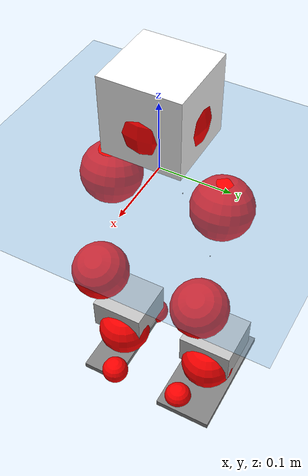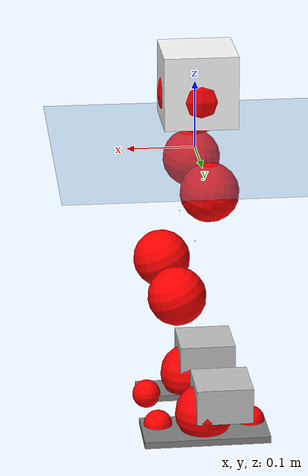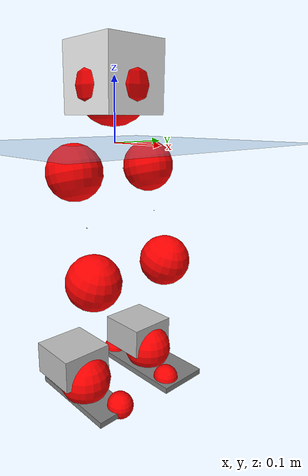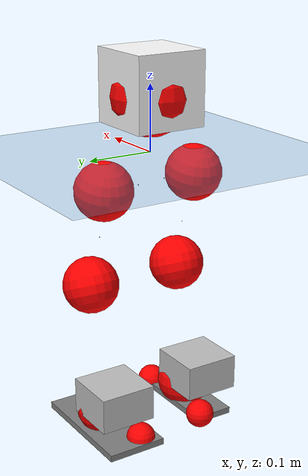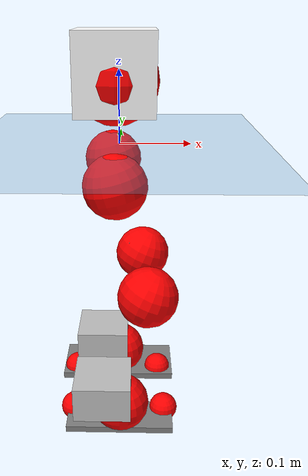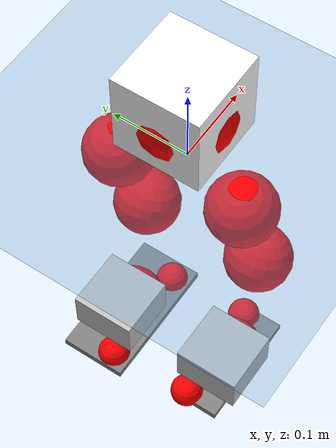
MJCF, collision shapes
<mujoco model="pi_12dof_release_v1">
  <compiler angle="radian" assetdir="assets" balanceinertia="true" inertiafromgeom="false"/>

  <option timestep="0.005" density="1.2" viscosity="2e-05"/>

  <size nkey="1"/>

  <visual>
    <quality shadowsize="8192"/>
    <map shadowclip="0.5"/>
  </visual>

  <default>
    <default class="/">
      <joint armature="0.01" damping="0.01" frictionloss="0.01"/>
      <geom contype="0" conaffinity="0" group="1" solref="-1000 -80"/>
      <site size="0.01 0.005 0.005" group="5"/>
      <general forcelimited="true" biastype="affine" gainprm="20" biasprm="0 -20 -0.5"/>
      <default class="foot">
        <geom size="0.0845 0.036 0.005" type="box" condim="6" group="4" priority="1" friction="0.9 0.2 0.2" solimp="0.015 1 0.005"/>
      </default>
      <default class="reward_collision_sphere">
        <geom group="5" rgba="1 0 0 1"/>
      </default>
    </default>
  </default>

  <asset>
    <texture type="skybox" colorspace="auto" name="//unnamed_texture_0" builtin="gradient" rgb1="0.95 0.95 0.95" rgb2="0.95 0.95 0.95" width="100" height="600"/>
    <texture type="2d" colorspace="auto" name="texplane" builtin="checker" rgb1="0.345 0.575 0.748" rgb2="0.345 0.575 0.748" markrgb="1 1 1" width="512" height="512"/>
    <material name="MatPlane" class="/" texture="texplane" texuniform="true" texrepeat="2 2" specular="0.9"/>
    <mesh name="baselink_1" class="/" file="baselink_1.STL"/>
    <mesh name="r_hip_pitch_link" class="/" file="r_hip_pitch_link.STL"/>
    <mesh name="r_hip_roll_link" class="/" file="r_hip_roll_link.STL"/>
    <mesh name="r_thigh_link" class="/" file="r_thigh_link.STL"/>
    <mesh name="r_calf_link" class="/" file="r_calf_link.STL"/>
    <mesh name="r_ankle_pitch_link" class="/" file="r_ankle_pitch_link.STL"/>
    <mesh name="r_ankle_roll_link" class="/" file="r_ankle_roll_link.STL"/>
    <mesh name="l_hip_pitch_link" class="/" file="l_hip_pitch_link.STL"/>
    <mesh name="l_hip_roll_link" class="/" file="l_hip_roll_link.STL"/>
    <mesh name="l_thigh_link" class="/" file="l_thigh_link.STL"/>
    <mesh name="l_calf_link" class="/" file="l_calf_link.STL"/>
    <mesh name="l_ankle_pitch_link" class="/" file="l_ankle_pitch_link.STL"/>
    <mesh name="l_ankle_roll_link" class="/" file="l_ankle_roll_link.STL"/>
  </asset>

  <worldbody>
    <geom name="floor" class="/" size="100 100 0.125" type="plane" group="0" material="MatPlane"/>
    <light name="toplight_shadow" class="/" pos="0 0 5" dir="0.0990148 0.0990148 -0.990148" type="directional" ambient="0.04 0.04 0.04" diffuse="0.55 0.55 0.55" specular="0.12 0.12 0.12"/>
    <light name="toplight_fill" class="/" pos="0 0 5" dir="0.0990148 0.0990148 -0.990148" type="directional" castshadow="false" ambient="0.04 0.04 0.04" diffuse="0.3 0.3 0.3" specular="0.08 0.08 0.08"/>
    <body name="trunk" pos="-0.00430888 0.00127749 -0.00161518" quat="0.999999 -0.0010922 0.000249103 -5.41347e-05">
      <inertial pos="0.00182524 -0.00389295 0.0496448" quat="0.695242 0.0097512 0.00937134 0.718649" mass="2.84291" diaginertia="0.0106025 0.00855918 0.0113011"/>
      <joint name="//unnamed_joint_0" type="free"/>
      <geom name="//unnamed_geom_1" class="/" type="mesh" density="0" rgba="1 1 1 1" mesh="baselink_1"/>
      <geom name="//unnamed_geom_2" class="/" size="0.0543619 0.0543619 0.0543619" pos="0 0 0.0979459" type="box" rgba="1 1 1 1"/>
      <geom name="//unnamed_geom_3" class="reward_collision_sphere" size="0.0597981" pos="0 0 0.0857027"/>
      <site name="imu" class="/" pos="0.01049 -0.0112767 0.0286199" size="0.0108724"/>
      <camera name="track" class="/" pos="0 -2.00166 0" quat="0.707107 0.707107 0 0" mode="trackcom"/>
      <camera name="ego_camera" class="/" pos="0.077742 0 0.220378" quat="-0.5 -0.5 0.5 0.5"/>
      <body name="r_hip_pitch_link" pos="-0.000268199 -0.0227488 -0.0398212" quat="0.992334 0.00139278 -0.12358 5.83722e-05">
        <inertial pos="0.00614805 -0.0568134 -2.06436e-06" quat="-0.0179713 0.706829 -0.0253701 0.706701" mass="0.456812" diaginertia="0.000124755 9.98164e-05 0.000219971"/>
        <joint name="r_hip_pitch_joint" class="/" pos="0 0 0" axis="-0.0106958 -0.999854 -0.0133189" range="-1.85207 1.22279" armature="0.0106656" damping="0" frictionloss="0.0110328"/>
        <geom name="//unnamed_geom_4" class="/" type="mesh" density="0" rgba="0.75294 0.75294 0.75294 1" mesh="r_hip_pitch_link"/>
        <geom name="//unnamed_geom_5" class="/" size="0.000543619 0.000543619 0.000543619" type="box" rgba="0.75294 0.75294 0.75294 1"/>
        <body name="r_hip_roll_link" pos="0.00138938 -0.0540448 0.000384442" quat="1 -2.74974e-05 -0.000374062 0.000292444">
          <inertial pos="-0.00122507 0.00157587 -0.0682302" quat="0.70505 -0.0818406 -0.0823396 0.69959" mass="0.496219" diaginertia="0.000394393 0.000273394 0.000343563"/>
          <joint name="r_hip_roll_joint" class="/" pos="0 0 0" axis="-0.999865 -0.00299027 0.0161667" range="-0.0722774 0.415267" armature="0.0113458" damping="0.00811815" frictionloss="0.0119659"/>
          <geom name="//unnamed_geom_6" class="/" type="mesh" density="0" rgba="0.75294 0.75294 0.75294 1" mesh="r_hip_roll_link"/>
          <geom name="//unnamed_geom_7" class="/" size="0.000543619 0.000543619 0.000543619" type="box" rgba="0.75294 0.75294 0.75294 1"/>
          <geom name="//unnamed_geom_8" class="reward_collision_sphere" size="0.0434895"/>
          <body name="r_thigh_link" pos="-0.0019979 0.00672087 -0.0844113" quat="0.999999 9.77198e-05 -0.000930834 -0.000359041">
            <inertial pos="0.000607039 -0.00145195 -0.0574106" quat="0.733891 0.678798 0.0156258 0.0198112" mass="0.142271" diaginertia="0.00015271 9.33991e-05 0.000164865"/>
            <joint name="r_thigh_joint" class="/" pos="0 0 0" axis="0.000122538 0.00173945 -0.999998" stiffness="0.0319038" range="-0.340161 0.48263" armature="0.0106133" damping="0.00924341" frictionloss="0.0105269"/>
            <geom name="//unnamed_geom_9" class="/" type="mesh" density="0" rgba="0.75294 0.75294 0.75294 1" mesh="r_thigh_link"/>
            <geom name="//unnamed_geom_10" class="/" size="0.000543619 0.000543619 0.000543619" type="box" rgba="0.75294 0.75294 0.75294 1"/>
            <body name="r_calf_link" pos="0.00632142 -0.00885679 -0.0827777" quat="0.947501 0.000317406 0.319752 0.000640826">
              <inertial pos="-0.00621055 0.00126552 -0.0804861" quat="0.999956 -0.00664788 0.00078845 0.00656878" mass="1.00208" diaginertia="0.00385798 0.00332664 0.00044625"/>
              <joint name="r_calf_joint" class="/" pos="0 0 0" axis="-0.0240741 -0.999613 -0.0139571" range="-1.68839 0.645544" armature="0.0109844" damping="0" frictionloss="0.00960152"/>
              <geom name="//unnamed_geom_11" class="/" type="mesh" density="0" rgba="0.75294 0.75294 0.75294 1" mesh="r_calf_link"/>
              <geom name="//unnamed_geom_12" class="/" size="0.000543619 0.000543619 0.000543619" type="box" rgba="0.75294 0.75294 0.75294 1"/>
              <geom name="//unnamed_geom_13" class="reward_collision_sphere" size="0.0434895"/>
              <body name="r_ankle_pitch_link" pos="0.00124823 0.00312295 -0.172343" quat="0.980047 -2.06272e-05 -0.198765 -4.46527e-05">
                <inertial pos="0.00471942 -0.00356444 0.00187257" quat="0.00288778 0.7083 -0.00415775 0.705894" mass="0.231688" diaginertia="0.000365595 0.000234186 0.000335166"/>
                <joint name="r_ankle_pitch_joint" class="/" pos="0 0 0" axis="-0.00235881 -0.999982 -0.00545705" range="-1.278 0.494585" armature="0.0126286" damping="0.0110415" frictionloss="0.0119049"/>
                <geom name="//unnamed_geom_14" class="/" type="mesh" density="0" rgba="0.75294 0.75294 0.75294 1" mesh="r_ankle_pitch_link"/>
                <geom name="//unnamed_geom_15" class="/" size="0.0424023 0.0434895 0.027181" type="box" rgba="0.75294 0.75294 0.75294 1"/>
                <body name="r_ankle_roll_link" pos="0.0781549 0.00491385 -0.00386235" quat="0.999995 0.00267616 0.000908243 -0.00110609">
                  <inertial pos="-0.0318411 0.00144711 -0.0211329" quat="0.553251 0.43304 0.443299 0.556664" mass="0.6755" diaginertia="0.00131836 0.000958332 0.000699168"/>
                  <joint name="r_ankle_roll_joint" class="/" pos="0 0 0" axis="-0.999522 0.0149421 -0.0270663" stiffness="0.00393861" range="-0.160349 0.107042" armature="0.0120519" damping="0" frictionloss="0.00960615"/>
                  <geom name="//unnamed_geom_16" class="/" type="mesh" density="0" rgba="0.75294 0.75294 0.75294 1" mesh="r_ankle_roll_link"/>
                  <geom name="//unnamed_geom_17" class="/" type="mesh" rgba="0.75294 0.75294 0.75294 1" mesh="r_ankle_roll_link"/>
                  <geom name="right_foot" class="foot" size="0.0814285 0.0308148 0.00481341" pos="-0.0528646 0 -0.0538702"/>
                  <geom name="//unnamed_geom_19" class="reward_collision_sphere" size="0.0434895" pos="-0.051828 0 -0.0244865"/>
                  <geom name="//unnamed_geom_20" class="reward_collision_sphere" size="0.0217448" pos="0.0155484 0.0200166 -0.048973"/>
                  <geom name="//unnamed_geom_21" class="reward_collision_sphere" size="0.0217448" pos="-0.124387 0.0200166 -0.048973"/>
                  <site name="right_foot" class="foot" pos="-0.0528646 0 -0.0538702" size="0.0108724"/>
                </body>
              </body>
            </body>
          </body>
        </body>
      </body>
      <body name="l_hip_pitch_link" pos="-0.0076521 0.0268737 -0.0406174" quat="0.992254 0.00068118 -0.124226 -0.000208774">
        <inertial pos="-0.0044741 0.0612656 -0.000690281" quat="-0.0309933 0.698652 0.0147777 0.714637" mass="0.502301" diaginertia="0.000150758 0.000105718 0.000292399"/>
        <joint name="l_hip_pitch_joint" class="/" pos="0 0 0" axis="0.0356408 0.999355 -0.00449521" stiffness="0.0247635" range="-1.14952 1.80406" armature="0.0138916" damping="0.0292829" frictionloss="0.0110952"/>
        <geom name="//unnamed_geom_22" class="/" type="mesh" density="0" rgba="0.75294 0.75294 0.75294 1" mesh="l_hip_pitch_link"/>
        <geom name="//unnamed_geom_23" class="/" size="0.000543619 0.000543619 0.000543619" type="box" rgba="0.75294 0.75294 0.75294 1"/>
        <body name="l_hip_roll_link" pos="-0.000236009 0.057596 1.45329e-05" quat="1 -0.000247862 -0.000170345 -0.00061222">
          <inertial pos="0.00112166 -0.00549029 -0.0739602" quat="0.705403 -0.0825983 -0.0825524 0.69912" mass="0.50104" diaginertia="0.000396005 0.000276635 0.000372945"/>
          <joint name="l_hip_roll_joint" class="/" pos="0 0 0" axis="-1 0.000502085 0.000266174" stiffness="0.0058637" range="-0.54948 0.123423" armature="0.00891218" damping="0.00964462" frictionloss="0.0110964"/>
          <geom name="//unnamed_geom_24" class="/" type="mesh" density="0" rgba="0.75294 0.75294 0.75294 1" mesh="l_hip_roll_link"/>
          <geom name="//unnamed_geom_25" class="/" size="0.000543619 0.000543619 0.000543619" type="box" rgba="0.75294 0.75294 0.75294 1"/>
          <geom name="//unnamed_geom_26" class="reward_collision_sphere" size="0.0434895"/>
          <body name="l_thigh_link" pos="0.0012163 -0.00354146 -0.0782597" quat="0.999995 0.00139365 0.000828419 0.00283363">
            <inertial pos="0.00305788 -0.00168902 -0.0654986" quat="0.675617 0.737253 0.000359679 -0.000322699" mass="0.152306" diaginertia="0.000147597 9.35577e-05 0.000159299"/>
            <joint name="l_thigh_joint" class="/" pos="0 0 0" axis="0.00712186 -0.00455047 -0.999964" stiffness="0.00158659" range="-0.494626 0.24653" armature="0.0104446" damping="0.0193773" frictionloss="0.011919"/>
            <geom name="//unnamed_geom_27" class="/" type="mesh" density="0" rgba="0.75294 0.75294 0.75294 1" mesh="l_thigh_link"/>
            <geom name="//unnamed_geom_28" class="/" size="0.000543619 0.000543619 0.000543619" type="box" rgba="0.75294 0.75294 0.75294 1"/>
            <body name="l_calf_link" pos="0.00540241 0.000940461 -0.0887344" quat="0.947681 0.000285706 0.319218 -0.000747957">
              <inertial pos="-0.00168728 0.00375394 -0.0849366" quat="0.999702 -0.00891623 -0.0204298 -0.0099234" mass="1.01812" diaginertia="0.00406687 0.00335718 0.000460578"/>
              <joint name="l_calf_joint" class="/" pos="0 0 0" axis="0.0167464 0.999779 -0.0127425" stiffness="0.00659603" range="-0.683727 1.67703" armature="0.0105052" damping="0.0156327" frictionloss="0.0127379"/>
              <geom name="//unnamed_geom_29" class="/" type="mesh" density="0" rgba="0.75294 0.75294 0.75294 1" mesh="l_calf_link"/>
              <geom name="//unnamed_geom_30" class="/" size="0.000543619 0.000543619 0.000543619" type="box" rgba="0.75294 0.75294 0.75294 1"/>
              <geom name="//unnamed_geom_31" class="reward_collision_sphere" size="0.0434895"/>
              <body name="l_ankle_pitch_link" pos="0.00228929 0.000733293 -0.175916" quat="0.979964 -0.000492589 -0.199173 0.000135135">
                <inertial pos="0.00740904 -0.0023245 0.00183842" quat="-0.0189543 0.703332 -0.026209 0.710125" mass="0.219333" diaginertia="0.000362779 0.000212992 0.000300941"/>
                <joint name="l_ankle_pitch_joint" class="/" pos="0 0 0" axis="-0.000158047 0.99997 0.00769726" stiffness="0.00470664" range="-0.535543 1.28072" armature="0.00964895" damping="0.0210151" frictionloss="0.0121522"/>
                <geom name="//unnamed_geom_32" class="/" type="mesh" density="0" rgba="0.75294 0.75294 0.75294 1" mesh="l_ankle_pitch_link"/>
                <geom name="//unnamed_geom_33" class="/" size="0.0424023 0.0434895 0.027181" type="box" rgba="0.75294 0.75294 0.75294 1"/>
                <body name="l_ankle_roll_link" pos="0.0787396 0.00119569 -0.000370655" quat="1 0.000183317 3.81816e-05 9.34238e-05">
                  <inertial pos="-0.020602 0.00633935 -0.0230123" quat="0.565247 0.426365 0.432842 0.557993" mass="0.621675" diaginertia="0.00134455 0.000962192 0.000753451"/>
                  <joint name="l_ankle_roll_joint" class="/" pos="0 0 0" axis="-0.999947 0.00850526 -0.00584229" range="-0.111019 0.172478" armature="0.0121972" damping="0" frictionloss="0.00864739"/>
                  <geom name="//unnamed_geom_34" class="/" type="mesh" density="0" rgba="0.75294 0.75294 0.75294 1" mesh="l_ankle_roll_link"/>
                  <geom name="//unnamed_geom_35" class="/" type="mesh" rgba="0.75294 0.75294 0.75294 1" mesh="l_ankle_roll_link"/>
                  <geom name="left_foot" class="foot" size="0.094203 0.0455326 0.00508915" pos="-0.0528646 0 -0.0538702"/>
                  <geom name="//unnamed_geom_37" class="reward_collision_sphere" size="0.0434895" pos="-0.051828 0 -0.0244865"/>
                  <geom name="//unnamed_geom_38" class="reward_collision_sphere" size="0.0217448" pos="0.0155484 -0.0200166 -0.048973"/>
                  <geom name="//unnamed_geom_39" class="reward_collision_sphere" size="0.0217448" pos="-0.124387 -0.0200166 -0.048973"/>
                  <site name="left_foot" class="foot" pos="-0.0528646 0 -0.0538702" size="0.0108724"/>
                </body>
              </body>
            </body>
          </body>
        </body>
      </body>
    </body>
  </worldbody>

  <contact>
    <pair class="/" geom1="floor" geom2="right_foot" name="//unnamed_contact_1"/>
    <pair class="/" geom1="floor" geom2="left_foot" name="//unnamed_contact_0"/>
  </contact>

  <actuator>
    <general name="r_hip_pitch_joint" class="/" joint="r_hip_pitch_joint" forcerange="-23.5946 23.5946" gainprm="22.876" biasprm="0 -22.876 -0.539848"/>
    <general name="r_hip_roll_joint" class="/" joint="r_hip_roll_joint" forcerange="-18.825 18.825" gainprm="22.876" biasprm="0 -22.876 -0.539848"/>
    <general name="r_thigh_joint" class="/" joint="r_thigh_joint" forcerange="-21.783 21.783" gainprm="22.876" biasprm="0 -22.876 -0.539848"/>
    <general name="r_calf_joint" class="/" joint="r_calf_joint" forcerange="-17.7372 17.7372" gainprm="22.876" biasprm="0 -22.876 -0.539848"/>
    <general name="r_ankle_pitch_joint" class="/" joint="r_ankle_pitch_joint" forcerange="-20.9504 20.9504" gainprm="22.876" biasprm="0 -22.876 -0.539848"/>
    <general name="r_ankle_roll_joint" class="/" joint="r_ankle_roll_joint" forcerange="-24.4293 24.4293" gainprm="22.876" biasprm="0 -22.876 -0.539848"/>
    <general name="l_hip_pitch_joint" class="/" joint="l_hip_pitch_joint" forcerange="-23.0585 23.0585" gainprm="22.876" biasprm="0 -22.876 -0.539848"/>
    <general name="l_hip_roll_joint" class="/" joint="l_hip_roll_joint" forcerange="-25.825 25.825" gainprm="22.876" biasprm="0 -22.876 -0.539848"/>
    <general name="l_thigh_joint" class="/" joint="l_thigh_joint" forcerange="-23.6719 23.6719" gainprm="22.876" biasprm="0 -22.876 -0.539848"/>
    <general name="l_calf_joint" class="/" joint="l_calf_joint" forcerange="-22.8 22.8" gainprm="22.876" biasprm="0 -22.876 -0.539848"/>
    <general name="l_ankle_pitch_joint" class="/" joint="l_ankle_pitch_joint" forcerange="-24.6102 24.6102" gainprm="22.876" biasprm="0 -22.876 -0.539848"/>
    <general name="l_ankle_roll_joint" class="/" joint="l_ankle_roll_joint" forcerange="-22.3035 22.3035" gainprm="22.876" biasprm="0 -22.876 -0.539848"/>
  </actuator>

  <sensor>
    <gyro site="imu" name="imu_angular_velocity"/>
    <velocimeter site="imu" name="imu_linear_velocity"/>
    <framelinvel objtype="site" objname="left_foot" name="left_foot_global_linear_velocity"/>
    <framelinvel objtype="site" objname="right_foot" name="right_foot_global_linear_velocity"/>
  </sensor>

  <keyframe>
    <key name="home" qpos="0 0 0.291 1 0 0 0 0.4 0 0 -0.8 0.4 0 -0.4 0 0 0.8 -0.4 0"/>
  </keyframe>
</mujoco>
